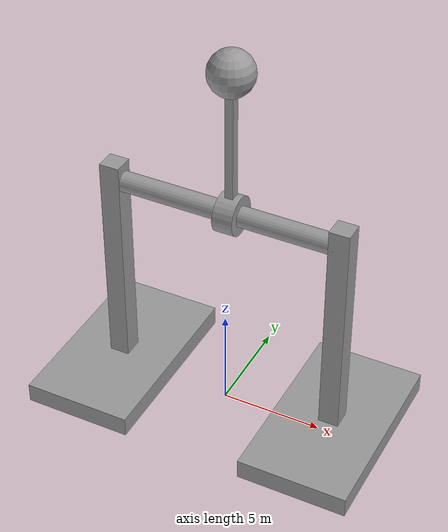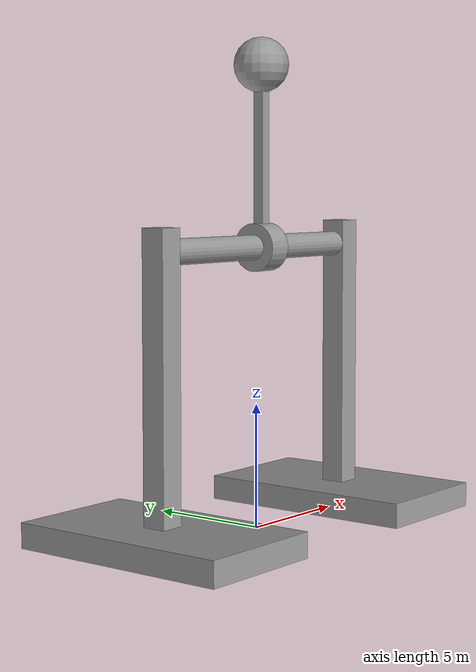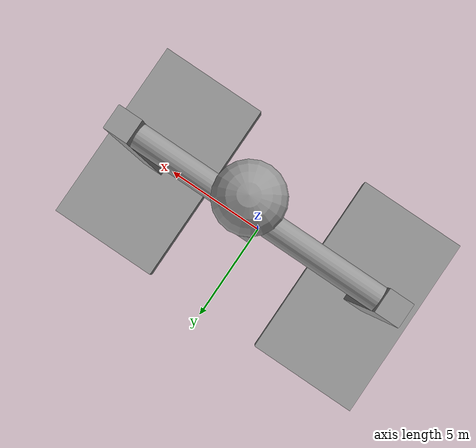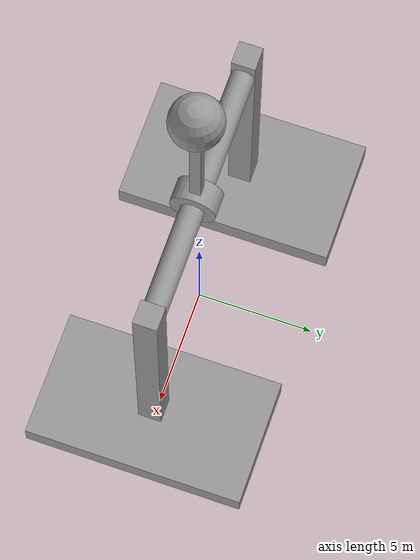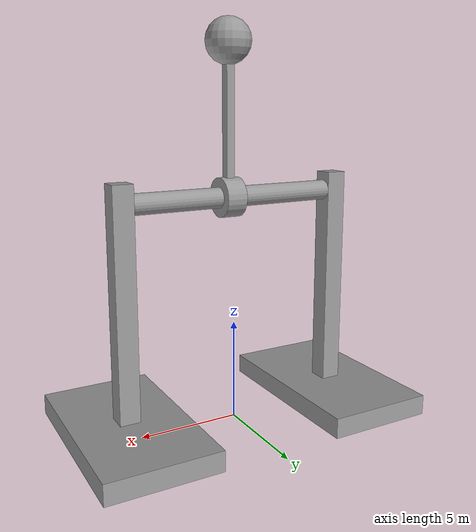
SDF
<?xml version='1.0'?>
<sdf version='1.6'>
  <model name='Untitled'>
    <model name='Pendulum_V1'>
      <link name='link_0'>
        <inertial>
          <mass>120.037</mass>
          <inertia>
            <ixx>1459.29</ixx>
            <ixy>0</ixy>
            <ixz>0</ixz>
            <iyy>1459.29</iyy>
            <iyz>0</iyz>
            <izz>20.0061</izz>
          </inertia>
          <pose frame=''>0 0 0 0 -0 0</pose>
        </inertial>
        <pose frame=''>-5.72862 -0.022552 6.20951 0 -0 0</pose>
        <self_collide>0</self_collide>
        <enable_wind>0</enable_wind>
        <kinematic>0</kinematic>
        <gravity>1</gravity>
        <visual name='visual'>
          <pose frame=''>0 0 0 0 -0 0</pose>
          <geometry>
            <box>
              <size>1 1 12.0368</size>
            </box>
          </geometry>
          <material>
            <lighting>1</lighting>
            <script>
              <uri>file://media/materials/scripts/gazebo.material</uri>
              <name>Gazebo/Grey</name>
            </script>
            <emissive>0 0 0 1</emissive>
            <shader type='pixel'>
              <normal_map>__default__</normal_map>
            </shader>
            <ambient>0.3 0.3 0.3 1</ambient>
            <diffuse>0.7 0.7 0.7 1</diffuse>
            <specular>0.01 0.01 0.01 1</specular>
          </material>
          <transparency>0</transparency>
          <cast_shadows>1</cast_shadows>
        </visual>
        <collision name='collision'>
          <laser_retro>0</laser_retro>
          <max_contacts>10</max_contacts>
          <pose frame=''>0 0 0 0 -0 0</pose>
          <geometry>
            <box>
              <size>1 1 12.0368</size>
            </box>
          </geometry>
          <surface>
            <friction>
              <ode>
                <mu>1</mu>
                <mu2>1</mu2>
                <fdir1>0 0 0</fdir1>
                <slip1>0</slip1>
                <slip2>0</slip2>
              </ode>
              <torsional>
                <coefficient>1</coefficient>
                <patch_radius>0</patch_radius>
                <surface_radius>0</surface_radius>
                <use_patch_radius>1</use_patch_radius>
                <ode>
                  <slip>0</slip>
                </ode>
              </torsional>
            </friction>
            <bounce>
              <restitution_coefficient>0</restitution_coefficient>
              <threshold>1e+06</threshold>
            </bounce>
            <contact>
              <collide_without_contact>0</collide_without_contact>
              <collide_without_contact_bitmask>1</collide_without_contact_bitmask>
              <collide_bitmask>1</collide_bitmask>
              <ode>
                <soft_cfm>0</soft_cfm>
                <soft_erp>0.2</soft_erp>
                <kp>1e+13</kp>
                <kd>1</kd>
                <max_vel>0.01</max_vel>
                <min_depth>0</min_depth>
              </ode>
              <bullet>
                <split_impulse>1</split_impulse>
                <split_impulse_penetration_threshold>-0.01</split_impulse_penetration_threshold>
                <soft_cfm>0</soft_cfm>
                <soft_erp>0.2</soft_erp>
                <kp>1e+13</kp>
                <kd>1</kd>
              </bullet>
            </contact>
          </surface>
        </collision>
      </link>
      <link name='link_0_clone'>
        <inertial>
          <mass>120.037</mass>
          <inertia>
            <ixx>1459.29</ixx>
            <ixy>0</ixy>
            <ixz>0</ixz>
            <iyy>1459.29</iyy>
            <iyz>0</iyz>
            <izz>20.0061</izz>
          </inertia>
          <pose frame=''>0 0 0 0 -0 0</pose>
        </inertial>
        <pose frame=''>5.72862 -0.022552 6.20951 0 -0 0</pose>
        <self_collide>0</self_collide>
        <enable_wind>0</enable_wind>
        <kinematic>0</kinematic>
        <gravity>1</gravity>
        <visual name='visual'>
          <pose frame=''>0 0 0 0 -0 0</pose>
          <geometry>
            <box>
              <size>1 1 12.0368</size>
            </box>
          </geometry>
          <material>
            <lighting>1</lighting>
            <script>
              <uri>file://media/materials/scripts/gazebo.material</uri>
              <name>Gazebo/Grey</name>
            </script>
            <shader type='pixel'>
              <normal_map>__default__</normal_map>
            </shader>
            <emissive>0 0 0 1</emissive>
            <ambient>0.3 0.3 0.3 1</ambient>
            <diffuse>0.7 0.7 0.7 1</diffuse>
            <specular>0.01 0.01 0.01 1</specular>
          </material>
          <transparency>0</transparency>
          <cast_shadows>1</cast_shadows>
        </visual>
        <collision name='collision'>
          <laser_retro>0</laser_retro>
          <max_contacts>10</max_contacts>
          <pose frame=''>0 0 0 0 -0 0</pose>
          <geometry>
            <box>
              <size>1 1 12.0368</size>
            </box>
          </geometry>
          <surface>
            <friction>
              <ode>
                <mu>1</mu>
                <mu2>1</mu2>
                <fdir1>0 0 0</fdir1>
                <slip1>0</slip1>
                <slip2>0</slip2>
              </ode>
              <torsional>
                <coefficient>1</coefficient>
                <patch_radius>0</patch_radius>
                <surface_radius>0</surface_radius>
                <use_patch_radius>1</use_patch_radius>
                <ode>
                  <slip>0</slip>
                </ode>
              </torsional>
            </friction>
            <bounce>
              <restitution_coefficient>0</restitution_coefficient>
              <threshold>1e+06</threshold>
            </bounce>
            <contact>
              <collide_without_contact>0</collide_without_contact>
              <collide_without_contact_bitmask>1</collide_without_contact_bitmask>
              <collide_bitmask>1</collide_bitmask>
              <ode>
                <soft_cfm>0</soft_cfm>
                <soft_erp>0.2</soft_erp>
                <kp>1e+13</kp>
                <kd>1</kd>
                <max_vel>0.01</max_vel>
                <min_depth>0</min_depth>
              </ode>
              <bullet>
                <split_impulse>1</split_impulse>
                <split_impulse_penetration_threshold>-0.01</split_impulse_penetration_threshold>
                <soft_cfm>0</soft_cfm>
                <soft_erp>0.2</soft_erp>
                <kp>1e+13</kp>
                <kd>1</kd>
              </bullet>
            </contact>
          </surface>
        </collision>
      </link>
      <link name='link_1'>
        <inertial>
          <mass>10.4411</mass>
          <inertia>
            <ixx>114.545</ixx>
            <ixy>0</ixy>
            <ixz>0</ixz>
            <iyy>114.545</iyy>
            <iyz>0</iyz>
            <izz>1.30514</izz>
          </inertia>
          <pose frame=''>0 0 0 0 -0 0</pose>
        </inertial>
        <pose frame=''>0.286881 -0.022558 11.2774 3.14149 1.56579 3.14149</pose>
        <self_collide>0</self_collide>
        <enable_wind>0</enable_wind>
        <kinematic>0</kinematic>
        <gravity>1</gravity>
        <visual name='visual'>
          <pose frame=''>0 0 0 0 -0 0</pose>
          <geometry>
            <cylinder>
              <radius>0.5</radius>
              <length>11.441</length>
            </cylinder>
          </geometry>
          <material>
            <lighting>1</lighting>
            <script>
              <uri>file://media/materials/scripts/gazebo.material</uri>
              <name>Gazebo/Grey</name>
            </script>
            <emissive>0 0 0 1</emissive>
            <shader type='pixel'>
              <normal_map>__default__</normal_map>
            </shader>
          </material>
          <transparency>0</transparency>
          <cast_shadows>1</cast_shadows>
        </visual>
        <collision name='collision'>
          <laser_retro>0</laser_retro>
          <max_contacts>10</max_contacts>
          <pose frame=''>0 0 0 0 -0 0</pose>
          <geometry>
            <cylinder>
              <radius>0.5</radius>
              <length>11.441</length>
            </cylinder>
          </geometry>
          <surface>
            <friction>
              <ode>
                <mu>1</mu>
                <mu2>1</mu2>
                <fdir1>0 0 0</fdir1>
                <slip1>0</slip1>
                <slip2>0</slip2>
              </ode>
              <torsional>
                <coefficient>1</coefficient>
                <patch_radius>0</patch_radius>
                <surface_radius>0</surface_radius>
                <use_patch_radius>1</use_patch_radius>
                <ode>
                  <slip>0</slip>
                </ode>
              </torsional>
            </friction>
            <bounce>
              <restitution_coefficient>0</restitution_coefficient>
              <threshold>1e+06</threshold>
            </bounce>
            <contact>
              <collide_without_contact>0</collide_without_contact>
              <collide_without_contact_bitmask>1</collide_without_contact_bitmask>
              <collide_bitmask>1</collide_bitmask>
              <ode>
                <soft_cfm>0</soft_cfm>
                <soft_erp>0.2</soft_erp>
                <kp>1e+13</kp>
                <kd>1</kd>
                <max_vel>0.01</max_vel>
                <min_depth>0</min_depth>
              </ode>
              <bullet>
                <split_impulse>1</split_impulse>
                <split_impulse_penetration_threshold>-0.01</split_impulse_penetration_threshold>
                <soft_cfm>0</soft_cfm>
                <soft_erp>0.2</soft_erp>
                <kp>1e+13</kp>
                <kd>1</kd>
              </bullet>
            </contact>
          </surface>
        </collision>
      </link>
      <link name='link_1_0'>
        <inertial>
          <mass>51000</mass>
          <inertia>
            <ixx>380591</ixx>
            <ixy>0</ixy>
            <ixz>0</ixz>
            <iyy>130021</iyy>
            <iyz>0</iyz>
            <izz>502112</izz>
          </inertia>
          <pose frame=''>0 0 0 0 -0 0</pose>
        </inertial>
        <pose frame=''>-5.71119 -0.021145 0.576158 0 -0 0</pose>
        <self_collide>0</self_collide>
        <enable_wind>0</enable_wind>
        <kinematic>0</kinematic>
        <gravity>1</gravity>
        <visual name='visual'>
          <pose frame=''>0 0 0 0 -0 0</pose>
          <geometry>
            <box>
              <size>5.43997 9.41014 1</size>
            </box>
          </geometry>
          <material>
            <lighting>1</lighting>
            <script>
              <uri>file://media/materials/scripts/gazebo.material</uri>
              <name>Gazebo/Grey</name>
            </script>
            <emissive>0 0 0 1</emissive>
            <shader type='vertex'>
              <normal_map>__default__</normal_map>
            </shader>
            <ambient>0.3 0.3 0.3 1</ambient>
            <diffuse>0.7 0.7 0.7 1</diffuse>
            <specular>0.01 0.01 0.01 1</specular>
          </material>
          <transparency>0</transparency>
          <cast_shadows>1</cast_shadows>
        </visual>
        <collision name='collision'>
          <laser_retro>0</laser_retro>
          <max_contacts>10</max_contacts>
          <pose frame=''>0 0 0 0 -0 0</pose>
          <geometry>
            <box>
              <size>5.43997 9.41014 1</size>
            </box>
          </geometry>
          <surface>
            <friction>
              <ode>
                <mu>1</mu>
                <mu2>1</mu2>
                <fdir1>0 0 0</fdir1>
                <slip1>0</slip1>
                <slip2>0</slip2>
              </ode>
              <torsional>
                <coefficient>1</coefficient>
                <patch_radius>0</patch_radius>
                <surface_radius>0</surface_radius>
                <use_patch_radius>1</use_patch_radius>
                <ode>
                  <slip>0</slip>
                </ode>
              </torsional>
            </friction>
            <bounce>
              <restitution_coefficient>0</restitution_coefficient>
              <threshold>1e+06</threshold>
            </bounce>
            <contact>
              <collide_without_contact>0</collide_without_contact>
              <collide_without_contact_bitmask>1</collide_without_contact_bitmask>
              <collide_bitmask>1</collide_bitmask>
              <ode>
                <soft_cfm>0</soft_cfm>
                <soft_erp>0.2</soft_erp>
                <kp>1e+13</kp>
                <kd>1</kd>
                <max_vel>0.01</max_vel>
                <min_depth>0</min_depth>
              </ode>
              <bullet>
                <split_impulse>1</split_impulse>
                <split_impulse_penetration_threshold>-0.01</split_impulse_penetration_threshold>
                <soft_cfm>0</soft_cfm>
                <soft_erp>0.2</soft_erp>
                <kp>1e+13</kp>
                <kd>1</kd>
              </bullet>
            </contact>
          </surface>
        </collision>
      </link>
      <link name='link_1_0_clone'>
        <inertial>
          <mass>51000</mass>
          <inertia>
            <ixx>380591</ixx>
            <ixy>0</ixy>
            <ixz>0</ixz>
            <iyy>130021</iyy>
            <iyz>0</iyz>
            <izz>502112</izz>
          </inertia>
          <pose frame=''>0 0 0 0 -0 0</pose>
        </inertial>
        <pose frame=''>5.72862 -0.022552 0.576158 0 -0 0</pose>
        <self_collide>0</self_collide>
        <enable_wind>0</enable_wind>
        <kinematic>0</kinematic>
        <gravity>1</gravity>
        <visual name='visual_0'>
          <pose frame=''>0 0 0 0 -0 0</pose>
          <geometry>
            <box>
              <size>5.43997 9.41014 1</size>
            </box>
          </geometry>
          <material>
            <lighting>1</lighting>
            <script>
              <uri>file://media/materials/scripts/gazebo.material</uri>
              <name>Gazebo/Grey</name>
            </script>
            <emissive>0 0 0 1</emissive>
            <shader type='pixel'>
              <normal_map>__default__</normal_map>
            </shader>
            <ambient>0.3 0.3 0.3 1</ambient>
            <diffuse>0.7 0.7 0.7 1</diffuse>
            <specular>0.01 0.01 0.01 1</specular>
          </material>
          <transparency>0</transparency>
          <cast_shadows>1</cast_shadows>
        </visual>
        <collision name='collision'>
          <laser_retro>0</laser_retro>
          <max_contacts>10</max_contacts>
          <pose frame=''>0 0 0 0 -0 0</pose>
          <geometry>
            <box>
              <size>5.43997 9.41014 1</size>
            </box>
          </geometry>
          <surface>
            <friction>
              <ode>
                <mu>1</mu>
                <mu2>1</mu2>
                <fdir1>0 0 0</fdir1>
                <slip1>0</slip1>
                <slip2>0</slip2>
              </ode>
              <torsional>
                <coefficient>1</coefficient>
                <patch_radius>0</patch_radius>
                <surface_radius>0</surface_radius>
                <use_patch_radius>1</use_patch_radius>
                <ode>
                  <slip>0</slip>
                </ode>
              </torsional>
            </friction>
            <bounce>
              <restitution_coefficient>0</restitution_coefficient>
              <threshold>1e+06</threshold>
            </bounce>
            <contact>
              <collide_without_contact>0</collide_without_contact>
              <collide_without_contact_bitmask>1</collide_without_contact_bitmask>
              <collide_bitmask>1</collide_bitmask>
              <ode>
                <soft_cfm>0</soft_cfm>
                <soft_erp>0.2</soft_erp>
                <kp>1e+13</kp>
                <kd>1</kd>
                <max_vel>0.01</max_vel>
                <min_depth>0</min_depth>
              </ode>
              <bullet>
                <split_impulse>1</split_impulse>
                <split_impulse_penetration_threshold>-0.01</split_impulse_penetration_threshold>
                <soft_cfm>0</soft_cfm>
                <soft_erp>0.2</soft_erp>
                <kp>1e+13</kp>
                <kd>1</kd>
              </bullet>
            </contact>
          </surface>
        </collision>
      </link>
      <link name='link_3'>
        <inertial>
          <mass>13.6807</mass>
          <inertia>
            <ixx>4.28735</ixx>
            <ixy>0</ixy>
            <ixz>0</ixz>
            <iyy>4.28735</iyy>
            <iyz>0</iyz>
            <izz>6.29458</izz>
          </inertia>
          <pose frame=''>0 0 0 0 -0 0</pose>
        </inertial>
        <pose frame=''>0.286881 -0.022558 11.2774 1.57078 0.016919 1.56997</pose>
        <self_collide>0</self_collide>
        <enable_wind>0</enable_wind>
        <kinematic>0</kinematic>
        <gravity>1</gravity>
        <visual name='visual'>
          <pose frame=''>0 0 0 0 -0 0</pose>
          <geometry>
            <cylinder>
              <radius>0.959276</radius>
              <length>1</length>
            </cylinder>
          </geometry>
          <material>
            <lighting>1</lighting>
            <script>
              <uri>file://media/materials/scripts/gazebo.material</uri>
              <name>Gazebo/Grey</name>
            </script>
            <emissive>0 0 0 1</emissive>
            <shader type='pixel'>
              <normal_map>__default__</normal_map>
            </shader>
          </material>
          <transparency>0</transparency>
          <cast_shadows>1</cast_shadows>
        </visual>
        <collision name='collision'>
          <laser_retro>0</laser_retro>
          <max_contacts>10</max_contacts>
          <pose frame=''>0 0 0 0 -0 0</pose>
          <geometry>
            <cylinder>
              <radius>0.959276</radius>
              <length>1</length>
            </cylinder>
          </geometry>
          <surface>
            <friction>
              <ode>
                <mu>1</mu>
                <mu2>1</mu2>
                <fdir1>0 0 0</fdir1>
                <slip1>0</slip1>
                <slip2>0</slip2>
              </ode>
              <torsional>
                <coefficient>1</coefficient>
                <patch_radius>0</patch_radius>
                <surface_radius>0</surface_radius>
                <use_patch_radius>1</use_patch_radius>
                <ode>
                  <slip>0</slip>
                </ode>
              </torsional>
            </friction>
            <bounce>
              <restitution_coefficient>0</restitution_coefficient>
              <threshold>1e+06</threshold>
            </bounce>
            <contact>
              <collide_without_contact>0</collide_without_contact>
              <collide_without_contact_bitmask>1</collide_without_contact_bitmask>
              <collide_bitmask>1</collide_bitmask>
              <ode>
                <soft_cfm>0</soft_cfm>
                <soft_erp>0.2</soft_erp>
                <kp>1e+13</kp>
                <kd>1</kd>
                <max_vel>0.01</max_vel>
                <min_depth>0</min_depth>
              </ode>
              <bullet>
                <split_impulse>1</split_impulse>
                <split_impulse_penetration_threshold>-0.01</split_impulse_penetration_threshold>
                <soft_cfm>0</soft_cfm>
                <soft_erp>0.2</soft_erp>
                <kp>1e+13</kp>
                <kd>1</kd>
              </bullet>
            </contact>
          </surface>
        </collision>
      </link>
      <link name='link_5'>
        <inertial>
          <mass>10.0603</mass>
          <inertia>
            <ixx>28.7188</ixx>
            <ixy>0</ixy>
            <ixz>0</ixz>
            <iyy>28.676</iyy>
            <iyz>0</iyz>
            <izz>0.307657</izz>
          </inertia>
          <pose frame=''>0 0 0 0 -0 0</pose>
        </inertial>
        <pose frame=''>0.28686 -0.022562 14.7409 -1e-06 0 0</pose>
        <self_collide>0</self_collide>
        <enable_wind>0</enable_wind>
        <kinematic>0</kinematic>
        <gravity>1</gravity>
        <visual name='visual'>
          <pose frame=''>0 0 0 0 -0 0</pose>
          <geometry>
            <box>
              <size>0.39744 0.457182 5.83497</size>
            </box>
          </geometry>
          <material>
            <lighting>1</lighting>
            <script>
              <uri>file://media/materials/scripts/gazebo.material</uri>
              <name>Gazebo/Grey</name>
            </script>
            <emissive>0 0 0 1</emissive>
            <shader type='pixel'>
              <normal_map>__default__</normal_map>
            </shader>
          </material>
          <transparency>0</transparency>
          <cast_shadows>1</cast_shadows>
        </visual>
        <collision name='collision'>
          <laser_retro>0</laser_retro>
          <max_contacts>10</max_contacts>
          <pose frame=''>0 0 0 0 -0 0</pose>
          <geometry>
            <box>
              <size>0.39744 0.457182 5.83497</size>
            </box>
          </geometry>
          <surface>
            <friction>
              <ode>
                <mu>1</mu>
                <mu2>1</mu2>
                <fdir1>0 0 0</fdir1>
                <slip1>0</slip1>
                <slip2>0</slip2>
              </ode>
              <torsional>
                <coefficient>1</coefficient>
                <patch_radius>0</patch_radius>
                <surface_radius>0</surface_radius>
                <use_patch_radius>1</use_patch_radius>
                <ode>
                  <slip>0</slip>
                </ode>
              </torsional>
            </friction>
            <bounce>
              <restitution_coefficient>0</restitution_coefficient>
              <threshold>1e+06</threshold>
            </bounce>
            <contact>
              <collide_without_contact>0</collide_without_contact>
              <collide_without_contact_bitmask>1</collide_without_contact_bitmask>
              <collide_bitmask>1</collide_bitmask>
              <ode>
                <soft_cfm>0</soft_cfm>
                <soft_erp>0.2</soft_erp>
                <kp>1e+13</kp>
                <kd>1</kd>
                <max_vel>0.01</max_vel>
                <min_depth>0</min_depth>
              </ode>
              <bullet>
                <split_impulse>1</split_impulse>
                <split_impulse_penetration_threshold>-0.01</split_impulse_penetration_threshold>
                <soft_cfm>0</soft_cfm>
                <soft_erp>0.2</soft_erp>
                <kp>1e+13</kp>
                <kd>1</kd>
              </bullet>
            </contact>
          </surface>
        </collision>
      </link>
      <link name='link_7'>
        <inertial>
          <mass>300.632</mass>
          <inertia>
            <ixx>143.991</ixx>
            <ixy>0</ixy>
            <ixz>0</ixz>
            <iyy>143.991</iyy>
            <iyz>0</iyz>
            <izz>143.991</izz>
          </inertia>
          <pose frame=''>0 0 0 0 -0 0</pose>
        </inertial>
        <pose frame=''>0.28685 -0.022565 18.4727 0 -0 0</pose>
        <self_collide>0</self_collide>
        <enable_wind>0</enable_wind>
        <kinematic>0</kinematic>
        <gravity>1</gravity>
        <visual name='visual'>
          <pose frame=''>0 0 0 0 -0 0</pose>
          <geometry>
            <sphere>
              <radius>1.09426</radius>
            </sphere>
          </geometry>
          <material>
            <lighting>1</lighting>
            <script>
              <uri>file://media/materials/scripts/gazebo.material</uri>
              <name>Gazebo/Grey</name>
            </script>
            <emissive>0 0 0 1</emissive>
            <shader type='vertex'>
              <normal_map>__default__</normal_map>
            </shader>
          </material>
          <transparency>0</transparency>
          <cast_shadows>1</cast_shadows>
        </visual>
        <collision name='collision'>
          <laser_retro>0</laser_retro>
          <max_contacts>10</max_contacts>
          <pose frame=''>0 0 0 0 -0 0</pose>
          <geometry>
            <sphere>
              <radius>1.09426</radius>
            </sphere>
          </geometry>
          <surface>
            <friction>
              <ode>
                <mu>1</mu>
                <mu2>1</mu2>
                <fdir1>0 0 0</fdir1>
                <slip1>0</slip1>
                <slip2>0</slip2>
              </ode>
              <torsional>
                <coefficient>1</coefficient>
                <patch_radius>0</patch_radius>
                <surface_radius>0</surface_radius>
                <use_patch_radius>1</use_patch_radius>
                <ode>
                  <slip>0</slip>
                </ode>
              </torsional>
            </friction>
            <bounce>
              <restitution_coefficient>0</restitution_coefficient>
              <threshold>1e+06</threshold>
            </bounce>
            <contact>
              <collide_without_contact>0</collide_without_contact>
              <collide_without_contact_bitmask>1</collide_without_contact_bitmask>
              <collide_bitmask>1</collide_bitmask>
              <ode>
                <soft_cfm>0</soft_cfm>
                <soft_erp>0.2</soft_erp>
                <kp>1e+13</kp>
                <kd>1</kd>
                <max_vel>0.01</max_vel>
                <min_depth>0</min_depth>
              </ode>
              <bullet>
                <split_impulse>1</split_impulse>
                <split_impulse_penetration_threshold>-0.01</split_impulse_penetration_threshold>
                <soft_cfm>0</soft_cfm>
                <soft_erp>0.2</soft_erp>
                <kp>1e+13</kp>
                <kd>1</kd>
              </bullet>
            </contact>
          </surface>
        </collision>
      </link>
      <joint name='link_0_JOINT_3' type='fixed'>
        <parent>link_0</parent>
        <child>link_1_0</child>
        <pose frame=''>0 0 0 0 -0 0</pose>
        <physics>
          <ode>
            <limit>
              <cfm>0</cfm>
              <erp>0.2</erp>
            </limit>
            <suspension>
              <cfm>0</cfm>
              <erp>0.2</erp>
            </suspension>
          </ode>
        </physics>
      </joint>
      <joint name='link_0_clone_JOINT_4' type='fixed'>
        <parent>link_0_clone</parent>
        <child>link_1_0_clone</child>
        <pose frame=''>0 0 0 0 -0 0</pose>
        <physics>
          <ode>
            <limit>
              <cfm>0</cfm>
              <erp>0.2</erp>
            </limit>
            <suspension>
              <cfm>0</cfm>
              <erp>0.2</erp>
            </suspension>
          </ode>
        </physics>
      </joint>
      <joint name='link_1_JOINT_0' type='fixed'>
        <parent>link_1</parent>
        <child>link_0_clone</child>
        <pose frame=''>0 0 0 0 -0 0</pose>
        <physics>
          <ode>
            <limit>
              <cfm>0</cfm>
              <erp>0.2</erp>
            </limit>
            <suspension>
              <cfm>0</cfm>
              <erp>0.2</erp>
            </suspension>
          </ode>
        </physics>
      </joint>
      <joint name='link_1_JOINT_1' type='fixed'>
        <parent>link_1</parent>
        <child>link_0</child>
        <pose frame=''>0 0 0 0 -0 0</pose>
        <physics>
          <ode>
            <limit>
              <cfm>0</cfm>
              <erp>0.2</erp>
            </limit>
            <suspension>
              <cfm>0</cfm>
              <erp>0.2</erp>
            </suspension>
          </ode>
        </physics>
      </joint>
      <joint name='link_3_JOINT_0' type='revolute'>
        <parent>link_1</parent>
        <child>link_3</child>
        <pose frame=''>0 0 0 0 -0 0</pose>
        <axis>
          <xyz>0 0 1</xyz>
          <use_parent_model_frame>0</use_parent_model_frame>
          <limit>
            <lower>-1.79769e+308</lower>
            <upper>1.79769e+308</upper>
            <effort>-1</effort>
            <velocity>-1</velocity>
          </limit>
          <dynamics>
            <spring_reference>0</spring_reference>
            <spring_stiffness>0</spring_stiffness>
            <damping>0</damping>
          </dynamics>
        </axis>
        <physics>
          <ode>
            <limit>
              <cfm>0</cfm>
              <erp>0.2</erp>
            </limit>
            <suspension>
              <cfm>0</cfm>
              <erp>0.2</erp>
            </suspension>
          </ode>
        </physics>
      </joint>
      <joint name='spinner_to_stick' type='fixed'>
        <parent>link_5</parent>
        <child>link_3</child>
        <pose frame=''>0 0 0 0 -0 0</pose>
        <physics>
          <ode>
            <limit>
              <cfm>0</cfm>
              <erp>0.2</erp>
            </limit>
            <suspension>
              <cfm>0</cfm>
              <erp>0.2</erp>
            </suspension>
          </ode>
        </physics>
      </joint>
      <joint name='stick_to_ball' type='fixed'>
        <parent>link_7</parent>
        <child>link_5</child>
        <pose frame=''>0 0 0 0 -0 0</pose>
        <physics>
          <ode>
            <limit>
              <cfm>0</cfm>
              <erp>0.2</erp>
            </limit>
            <suspension>
              <cfm>0</cfm>
              <erp>0.2</erp>
            </suspension>
          </ode>
        </physics>
      </joint>
      <static>0</static>
      <allow_auto_disable>1</allow_auto_disable>
      <plugin name='pendulum_controller' filename='libpendulum_plugin2.so'/>
      <pose frame=''>0 0 0 0 -0 0</pose>
    </model>
    <static>0</static>
    <allow_auto_disable>1</allow_auto_disable>
  </model>
</sdf>
